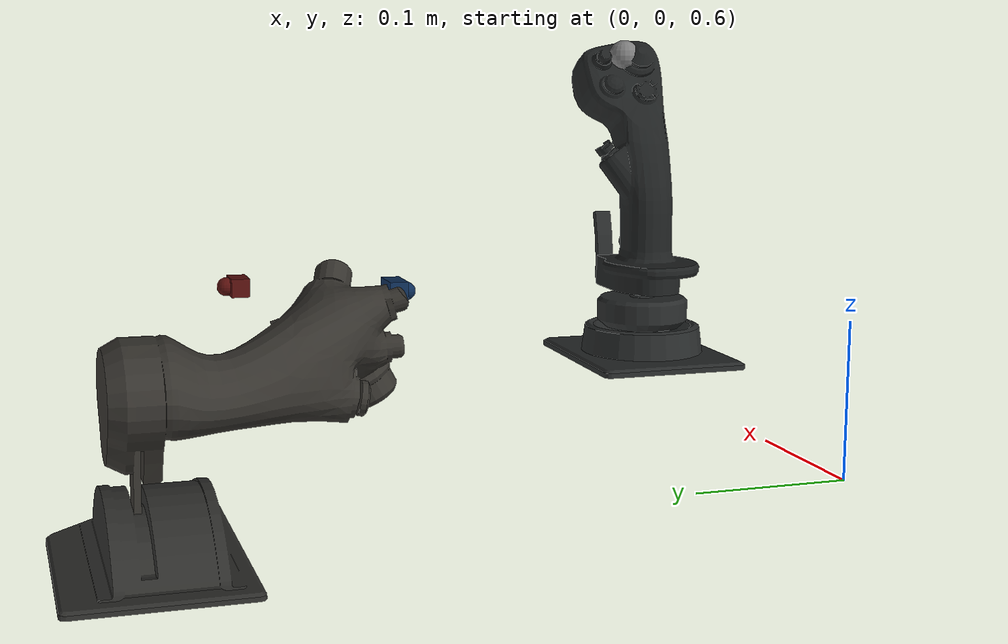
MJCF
<?xml version='1.0' encoding='utf-8'?>
<mujoco model="imported_3d66_joystick_throttle">
  <compiler angle="radian" />
  <option gravity="0 0 -9.81" />
  <asset>
    <mesh name="fbx_controls_static_mesh" file="meshes/3d66_controls_static.obj" />
    <mesh name="fbx_throttle_moving_mesh" file="meshes/3d66_throttle_moving.obj" />
    <mesh name="fbx_stick_static_mesh" file="meshes/3d66_stick_static.obj" />
    <mesh name="fbx_stick_moving_mesh" file="meshes/3d66_stick_moving.obj" />
    <mesh name="imported_3d66_controls_mesh" file="meshes/3d66_JDH5455235936_controls.obj" />
  </asset>
  <worldbody>
    <light name="imported_controls_key" pos="-0.4 -0.6 1.8" />
    <body name="imported_3d66_joystick_throttle" pos="0.24 0 0.62">
      <geom name="fbx_controls_static_visual" type="mesh" mesh="fbx_controls_static_mesh" contype="0" conaffinity="0" rgba="0.18 0.18 0.17 1" />
      <geom name="fbx_stick_static_visual" type="mesh" mesh="fbx_stick_static_mesh" contype="0" conaffinity="0" rgba="0.16 0.17 0.17 1" />
      <body name="fbx_throttle_handle_body" pos="-0.12 0.3 0">
        <inertial pos="0.02 0 0.07" mass="0.25" diaginertia="0.001 0.001 0.001" />
        <joint name="throttle_joint" type="slide" axis="1 0 0" range="0 0.16" damping="4.0" frictionloss="2.0" />
        <geom name="fbx_throttle_visual" type="mesh" mesh="fbx_throttle_moving_mesh" density="0" contype="0" conaffinity="0" rgba="0.21 0.20 0.18 1" />
        <site name="throttle_force_site" pos="0.02 0 0.07" size="0.012" />
        <geom name="throttle_thumb_switch" type="box" pos="0.035 -0.055 0.085" size="0.012 0.006 0.008" density="0" contype="0" conaffinity="0" rgba="0.05 0.18 0.35 1" />
        <geom name="throttle_index_switch" type="box" pos="0.055 0.045 0.09" size="0.010 0.006 0.006" density="0" contype="0" conaffinity="0" rgba="0.35 0.06 0.05 1" />
        <site name="throttle_thumb_switch_site" pos="0.035 -0.063 0.085" size="0.006" rgba="0.05 0.18 0.35 1" />
        <site name="throttle_index_switch_site" pos="0.055 0.053 0.09" size="0.006" rgba="0.35 0.06 0.05 1" />
      </body>
      <body name="fbx_stick_roll_frame" pos="0.06 0 0.08">
        <geom name="fbx_stick_roll_hub" type="sphere" size="0.015" mass="0.02" contype="0" conaffinity="0" rgba="0.16 0.17 0.17 1" />
        <joint name="stick_roll_joint" type="hinge" axis="1 0 0" range="-0.3 0.3" stiffness="5.0" damping="0.15" frictionloss="0.05" />
        <body name="fbx_stick_pitch_frame">
          <inertial pos="0.01938000321 0.003370568156 0.07739527524" mass="0.30" diaginertia="0.001 0.001 0.001" />
          <joint name="stick_pitch_joint" type="hinge" axis="0 1 0" range="-0.3 0.3" stiffness="5.0" damping="0.15" frictionloss="0.05" />
          <geom name="fbx_stick_visual" type="mesh" mesh="fbx_stick_moving_mesh" density="0" contype="0" conaffinity="0" rgba="0.12 0.13 0.13 1" />
          <site name="stick_force_site" pos="0.03876000643 0.006741136312 0.1547905505" size="0.012" />
        </body>
      </body>
    </body>
    <camera name="imported_3d66_controls_view" pos="-0.55 -0.80 0.95" xyaxes="0.82 -0.57 0 0.28 0.40 0.87" fovy="50" />
  </worldbody>
  <sensor>
    <jointpos name="stick_roll_position" joint="stick_roll_joint" />
    <jointvel name="stick_roll_velocity" joint="stick_roll_joint" />
    <jointpos name="stick_pitch_position" joint="stick_pitch_joint" />
    <jointvel name="stick_pitch_velocity" joint="stick_pitch_joint" />
    <force name="stick_force" site="stick_force_site" />
    <torque name="stick_torque" site="stick_force_site" />
    <jointpos name="throttle_position" joint="throttle_joint" />
    <jointvel name="throttle_velocity" joint="throttle_joint" />
    <force name="throttle_force" site="throttle_force_site" />
  </sensor>
</mujoco>
